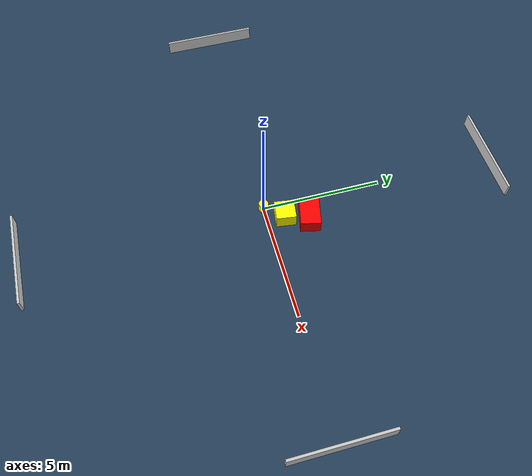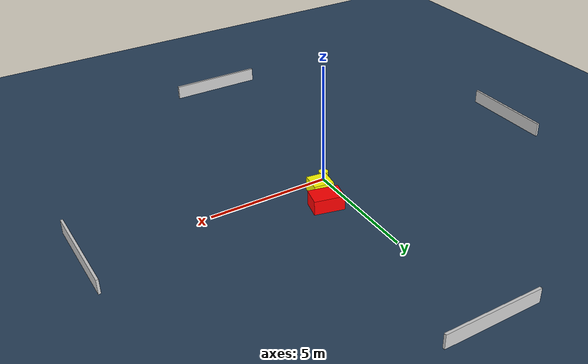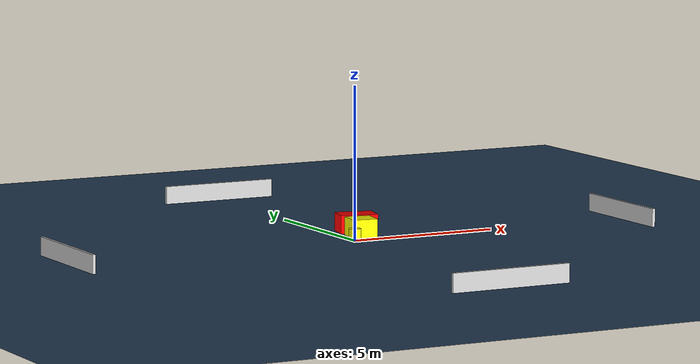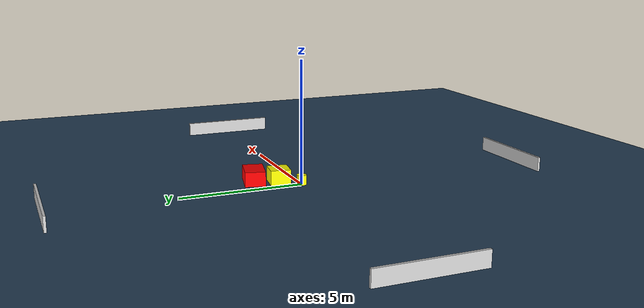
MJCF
<?xml version="1.0" ?>
<mujoco model="generated_environment">
  <option timestep="0.01" integrator="RK4" cone="elliptic"/>
  <default>
    <geom density="1"/>
  </default>
  <asset>
    <texture builtin="gradient" height="3072" name="skybox" rgb1="0.3 0.5 0.7" rgb2="0 0 0" type="skybox" width="512"/>
    <texture builtin="checker" height="300" name="groundplane" rgb1="0.2 0.3 0.4" rgb2="0.1 0.2 0.3" type="2d" width="300"/>
    <material name="groundplane" reflectance="0.2" texrepeat="5 5" texture="groundplane"/>
  </asset>
  <worldbody>
    <light dir="0 0 -1" directional="true" pos="0 0 1.5"/>
    <geom condim="3" friction="0.5 0.005 0.001" material="groundplane" name="floor" pos="0 0 0" size="0 0 0.05" type="plane"/>
    <body name="walls">
      <geom name="wall_1" condim="4" pos="-10.0 0.0 0.3" rgba="0.800000011920929 0.800000011920929 0.800000011920929 1.0" size="0.05 2.0 0.3" type="box"/>
      <geom name="wall_2" condim="4" pos="10.0 0.0 0.3" rgba="0.800000011920929 0.800000011920929 0.800000011920929 1.0" size="0.05 2.0 0.3" type="box"/>
      <geom name="wall_3" condim="4" pos="0.0 -10.0 0.3" rgba="0.800000011920929 0.800000011920929 0.800000011920929 1.0" size="2.0 0.05 0.3" type="box"/>
      <geom name="wall_4" condim="4" pos="0.0 10.0 0.3" rgba="0.800000011920929 0.800000011920929 0.800000011920929 1.0" size="2.0 0.05 0.3" type="box"/>
    </body>
    <body name="robot">
      <joint name="joint_x" type="slide" pos="0 0 0" axis="1 0 0"/>
      <joint name="joint_y" type="slide" pos="0 0 0" axis="0 1 0"/>
      <geom name="robot" type="cylinder" pos="0.0 0.0 0.2" size="0.2 0.2 0.0" mass="5.0" friction="1.0 0.005 0.0001" condim="4" rgba="1.0 1.0 0.0 1.0"/>
    </body>
    <body name="obstacle_1_movable">
      <geom name="obstacle_1_movable" condim="4" pos="0.6200828466575912 0.7368253066583816 0.3" euler="0 0 82.05355590979029" friction="0.0 0.005 0.001" rgba="1.0 1.0 0.0 1.0" size="0.41130236770212536 0.414901494455132 0.3" type="box" mass="0.1"/>
      <joint type="free"/>
    </body>
    <body name="obstacle_2_static">
      <geom name="obstacle_2_static" condim="4" pos="0.9367271726910036 1.687437245694115 0.3" euler="0 0 347.138859007682" friction="0.0 0.005 0.001" rgba="1.0 0.0 0.0 1.0" size="0.6191616227539465 0.4128958892794493 0.3" type="box"/>
    </body>
  </worldbody>
  <actuator>
    <motor name="actuator_x" joint="joint_x" gear="1" ctrlrange="-1 1"/>
    <motor name="actuator_y" joint="joint_y" gear="1" ctrlrange="-1 1"/>
  </actuator>
</mujoco>
